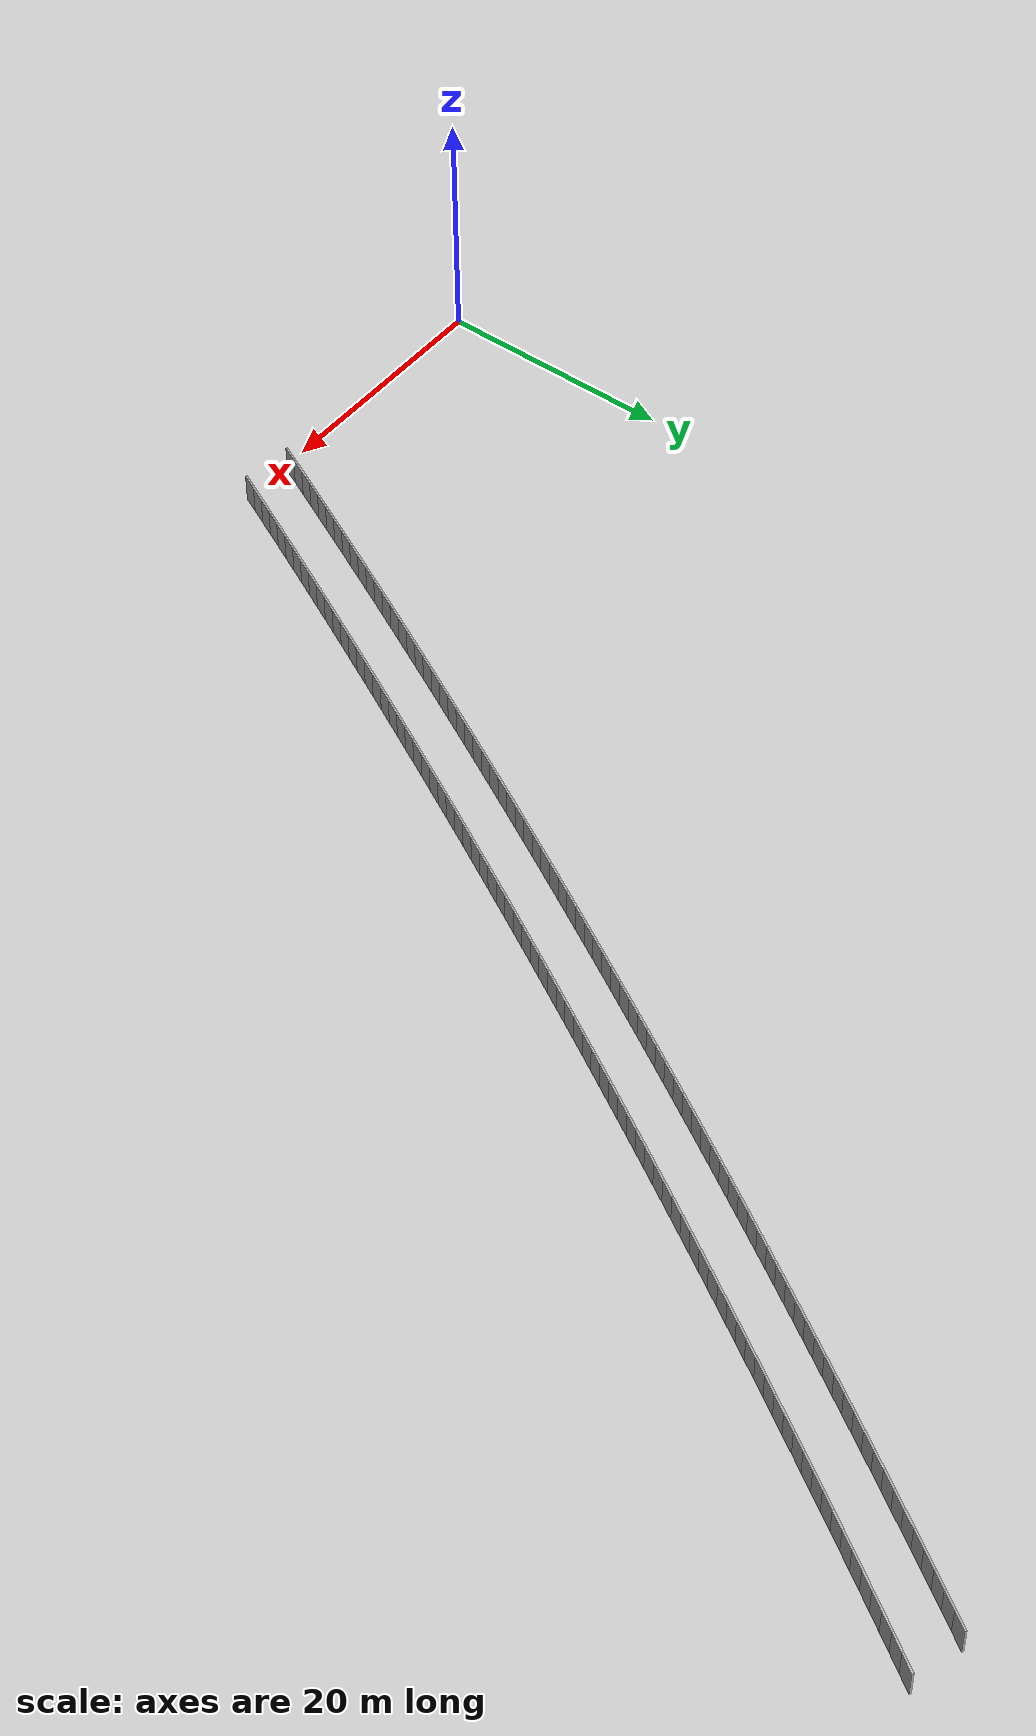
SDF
<sdf version="1.6">
 <model name="sps_0217">
  <static>1</static>
  <allow_auto_disable>0</allow_auto_disable>
  <link name="Wall4891">
   <collision name="collision"><geometry><box><size>1.49664 0.15 2.5</size></box></geometry></collision>
   <visual name="visual">
    <geometry><box><size>1.49664 0.15 2.5</size></box></geometry>
    <transparency>0.0</transparency>
   </visual>
   <pose>81.4339 98.8159 1.25 0 0 -2.13633</pose>
  </link>
  <link name="Wall4892">
   <collision name="collision"><geometry><box><size>1.49649 0.15 2.5</size></box></geometry></collision>
   <visual name="visual">
    <geometry><box><size>1.49649 0.15 2.5</size></box></geometry>
    <transparency>0.0</transparency>
   </visual>
   <pose>80.633 97.5517 1.25 0 0 -2.13466</pose>
  </link>
  <link name="Wall4893">
   <collision name="collision"><geometry><box><size>1.49655 0.15 2.5</size></box></geometry></collision>
   <visual name="visual">
    <geometry><box><size>1.49655 0.15 2.5</size></box></geometry>
    <transparency>0.0</transparency>
   </visual>
   <pose>79.8342 96.2862 1.25 0 0 -2.13304</pose>
  </link>
  <link name="Wall4894">
   <collision name="collision"><geometry><box><size>1.49655 0.15 2.5</size></box></geometry></collision>
   <visual name="visual">
    <geometry><box><size>1.49655 0.15 2.5</size></box></geometry>
    <transparency>0.0</transparency>
   </visual>
   <pose>79.0373 95.0194 1.25 0 0 -2.1315</pose>
  </link>
  <link name="Wall4895">
   <collision name="collision"><geometry><box><size>1.49648 0.15 2.5</size></box></geometry></collision>
   <visual name="visual">
    <geometry><box><size>1.49648 0.15 2.5</size></box></geometry>
    <transparency>0.0</transparency>
   </visual>
   <pose>78.2425 93.7514 1.25 0 0 -2.12989</pose>
  </link>
  <link name="Wall4896">
   <collision name="collision"><geometry><box><size>1.49633 0.15 2.5</size></box></geometry></collision>
   <visual name="visual">
    <geometry><box><size>1.49633 0.15 2.5</size></box></geometry>
    <transparency>0.0</transparency>
   </visual>
   <pose>77.4499 92.4822 1.25 0 0 -2.12827</pose>
  </link>
  <link name="Wall4897">
   <collision name="collision"><geometry><box><size>1.49661 0.15 2.5</size></box></geometry></collision>
   <visual name="visual">
    <geometry><box><size>1.49661 0.15 2.5</size></box></geometry>
    <transparency>0.0</transparency>
   </visual>
   <pose>76.6591 91.2117 1.25 0 0 -2.12672</pose>
  </link>
  <link name="Wall4898">
   <collision name="collision"><geometry><box><size>1.49663 0.15 2.5</size></box></geometry></collision>
   <visual name="visual">
    <geometry><box><size>1.49663 0.15 2.5</size></box></geometry>
    <transparency>0.0</transparency>
   </visual>
   <pose>75.8703 89.9399 1.25 0 0 -2.12527</pose>
  </link>
  <link name="Wall4899">
   <collision name="collision"><geometry><box><size>1.49649 0.15 2.5</size></box></geometry></collision>
   <visual name="visual">
    <geometry><box><size>1.49649 0.15 2.5</size></box></geometry>
    <transparency>0.0</transparency>
   </visual>
   <pose>75.0834 88.6669 1.25 0 0 -2.12365</pose>
  </link>
  <link name="Wall4900">
   <collision name="collision"><geometry><box><size>1.49668 0.15 2.5</size></box></geometry></collision>
   <visual name="visual">
    <geometry><box><size>1.49668 0.15 2.5</size></box></geometry>
    <transparency>0.0</transparency>
   </visual>
   <pose>74.2985 87.3926 1.25 0 0 -2.12199</pose>
  </link>
  <link name="Wall4901">
   <collision name="collision"><geometry><box><size>1.49649 0.15 2.5</size></box></geometry></collision>
   <visual name="visual">
    <geometry><box><size>1.49649 0.15 2.5</size></box></geometry>
    <transparency>0.0</transparency>
   </visual>
   <pose>73.5159 86.117 1.25 0 0 -2.1203</pose>
  </link>
  <link name="Wall4902">
   <collision name="collision"><geometry><box><size>1.49635 0.15 2.5</size></box></geometry></collision>
   <visual name="visual">
    <geometry><box><size>1.49635 0.15 2.5</size></box></geometry>
    <transparency>0.0</transparency>
   </visual>
   <pose>72.7353 84.8403 1.25 0 0 -2.11882</pose>
  </link>
  <link name="Wall4903">
   <collision name="collision"><geometry><box><size>1.49669 0.15 2.5</size></box></geometry></collision>
   <visual name="visual">
    <geometry><box><size>1.49669 0.15 2.5</size></box></geometry>
    <transparency>0.0</transparency>
   </visual>
   <pose>71.9567 83.5623 1.25 0 0 -2.11715</pose>
  </link>
  <link name="Wall4904">
   <collision name="collision"><geometry><box><size>1.49645 0.15 2.5</size></box></geometry></collision>
   <visual name="visual">
    <geometry><box><size>1.49645 0.15 2.5</size></box></geometry>
    <transparency>0.0</transparency>
   </visual>
   <pose>71.18 82.283 1.25 0 0 -2.11563</pose>
  </link>
  <link name="Wall4905">
   <collision name="collision"><geometry><box><size>1.49648 0.15 2.5</size></box></geometry></collision>
   <visual name="visual">
    <geometry><box><size>1.49648 0.15 2.5</size></box></geometry>
    <transparency>0.0</transparency>
   </visual>
   <pose>70.4054 81.0026 1.25 0 0 -2.11409</pose>
  </link>
  <link name="Wall4906">
   <collision name="collision"><geometry><box><size>1.49665 0.15 2.5</size></box></geometry></collision>
   <visual name="visual">
    <geometry><box><size>1.49665 0.15 2.5</size></box></geometry>
    <transparency>0.0</transparency>
   </visual>
   <pose>69.6328 79.7209 1.25 0 0 -2.11245</pose>
  </link>
  <link name="Wall4907">
   <collision name="collision"><geometry><box><size>1.49645 0.15 2.5</size></box></geometry></collision>
   <visual name="visual">
    <geometry><box><size>1.49645 0.15 2.5</size></box></geometry>
    <transparency>0.0</transparency>
   </visual>
   <pose>68.8622 78.438 1.25 0 0 -2.11096</pose>
  </link>
  <link name="Wall4908">
   <collision name="collision"><geometry><box><size>1.49652 0.15 2.5</size></box></geometry></collision>
   <visual name="visual">
    <geometry><box><size>1.49652 0.15 2.5</size></box></geometry>
    <transparency>0.0</transparency>
   </visual>
   <pose>68.0937 77.1539 1.25 0 0 -2.10922</pose>
  </link>
  <link name="Wall4909">
   <collision name="collision"><geometry><box><size>1.49633 0.15 2.5</size></box></geometry></collision>
   <visual name="visual">
    <geometry><box><size>1.49633 0.15 2.5</size></box></geometry>
    <transparency>0.0</transparency>
   </visual>
   <pose>67.3274 75.8686 1.25 0 0 -2.10773</pose>
  </link>
  <link name="Wall4910">
   <collision name="collision"><geometry><box><size>1.49669 0.15 2.5</size></box></geometry></collision>
   <visual name="visual">
    <geometry><box><size>1.49669 0.15 2.5</size></box></geometry>
    <transparency>0.0</transparency>
   </visual>
   <pose>66.5629 74.5821 1.25 0 0 -2.10622</pose>
  </link>
  <link name="Wall4911">
   <collision name="collision"><geometry><box><size>1.49656 0.15 2.5</size></box></geometry></collision>
   <visual name="visual">
    <geometry><box><size>1.49656 0.15 2.5</size></box></geometry>
    <transparency>0.0</transparency>
   </visual>
   <pose>65.8003 73.2943 1.25 0 0 -2.10456</pose>
  </link>
  <link name="Wall4912">
   <collision name="collision"><geometry><box><size>1.49643 0.15 2.5</size></box></geometry></collision>
   <visual name="visual">
    <geometry><box><size>1.49643 0.15 2.5</size></box></geometry>
    <transparency>0.0</transparency>
   </visual>
   <pose>65.0399 72.0054 1.25 0 0 -2.10305</pose>
  </link>
  <link name="Wall4913">
   <collision name="collision"><geometry><box><size>1.49648 0.15 2.5</size></box></geometry></collision>
   <visual name="visual">
    <geometry><box><size>1.49648 0.15 2.5</size></box></geometry>
    <transparency>0.0</transparency>
   </visual>
   <pose>64.2816 70.7153 1.25 0 0 -2.10133</pose>
  </link>
  <link name="Wall4914">
   <collision name="collision"><geometry><box><size>1.49661 0.15 2.5</size></box></geometry></collision>
   <visual name="visual">
    <geometry><box><size>1.49661 0.15 2.5</size></box></geometry>
    <transparency>0.0</transparency>
   </visual>
   <pose>63.5254 69.4239 1.25 0 0 -2.09986</pose>
  </link>
  <link name="Wall4915">
   <collision name="collision"><geometry><box><size>1.49658 0.15 2.5</size></box></geometry></collision>
   <visual name="visual">
    <geometry><box><size>1.49658 0.15 2.5</size></box></geometry>
    <transparency>0.0</transparency>
   </visual>
   <pose>62.771 68.1313 1.25 0 0 -2.09821</pose>
  </link>
  <link name="Wall4916">
   <collision name="collision"><geometry><box><size>1.49654 0.15 2.5</size></box></geometry></collision>
   <visual name="visual">
    <geometry><box><size>1.49654 0.15 2.5</size></box></geometry>
    <transparency>0.0</transparency>
   </visual>
   <pose>62.0189 66.8375 1.25 0 0 -2.09662</pose>
  </link>
  <link name="Wall4917">
   <collision name="collision"><geometry><box><size>1.49637 0.15 2.5</size></box></geometry></collision>
   <visual name="visual">
    <geometry><box><size>1.49637 0.15 2.5</size></box></geometry>
    <transparency>0.0</transparency>
   </visual>
   <pose>61.2688 65.5426 1.25 0 0 -2.09504</pose>
  </link>
  <link name="Wall4918">
   <collision name="collision"><geometry><box><size>1.49667 0.15 2.5</size></box></geometry></collision>
   <visual name="visual">
    <geometry><box><size>1.49667 0.15 2.5</size></box></geometry>
    <transparency>0.0</transparency>
   </visual>
   <pose>60.5207 64.2465 1.25 0 0 -2.09351</pose>
  </link>
  <link name="Wall4919">
   <collision name="collision"><geometry><box><size>1.49633 0.15 2.5</size></box></geometry></collision>
   <visual name="visual">
    <geometry><box><size>1.49633 0.15 2.5</size></box></geometry>
    <transparency>0.0</transparency>
   </visual>
   <pose>59.7746 62.9492 1.25 0 0 -2.09181</pose>
  </link>
  <link name="Wall4920">
   <collision name="collision"><geometry><box><size>1.49664 0.15 2.5</size></box></geometry></collision>
   <visual name="visual">
    <geometry><box><size>1.49664 0.15 2.5</size></box></geometry>
    <transparency>0.0</transparency>
   </visual>
   <pose>59.0308 61.6507 1.25 0 0 -2.09028</pose>
  </link>
  <link name="Wall4921">
   <collision name="collision"><geometry><box><size>1.49645 0.15 2.5</size></box></geometry></collision>
   <visual name="visual">
    <geometry><box><size>1.49645 0.15 2.5</size></box></geometry>
    <transparency>0.0</transparency>
   </visual>
   <pose>58.2889 60.351 1.25 0 0 -2.08866</pose>
  </link>
  <link name="Wall4922">
   <collision name="collision"><geometry><box><size>1.49649 0.15 2.5</size></box></geometry></collision>
   <visual name="visual">
    <geometry><box><size>1.49649 0.15 2.5</size></box></geometry>
    <transparency>0.0</transparency>
   </visual>
   <pose>57.5491 59.0502 1.25 0 0 -2.08714</pose>
  </link>
  <link name="Wall4923">
   <collision name="collision"><geometry><box><size>1.49656 0.15 2.5</size></box></geometry></collision>
   <visual name="visual">
    <geometry><box><size>1.49656 0.15 2.5</size></box></geometry>
    <transparency>0.0</transparency>
   </visual>
   <pose>56.8112 57.7482 1.25 0 0 -2.08557</pose>
  </link>
  <link name="Wall4924">
   <collision name="collision"><geometry><box><size>1.49658 0.15 2.5</size></box></geometry></collision>
   <visual name="visual">
    <geometry><box><size>1.49658 0.15 2.5</size></box></geometry>
    <transparency>0.0</transparency>
   </visual>
   <pose>56.0754 56.445 1.25 0 0 -2.08402</pose>
  </link>
  <link name="Wall4925">
   <collision name="collision"><geometry><box><size>1.49654 0.15 2.5</size></box></geometry></collision>
   <visual name="visual">
    <geometry><box><size>1.49654 0.15 2.5</size></box></geometry>
    <transparency>0.0</transparency>
   </visual>
   <pose>55.3418 55.1406 1.25 0 0 -2.0823</pose>
  </link>
  <link name="Wall4926">
   <collision name="collision"><geometry><box><size>1.49652 0.15 2.5</size></box></geometry></collision>
   <visual name="visual">
    <geometry><box><size>1.49652 0.15 2.5</size></box></geometry>
    <transparency>0.0</transparency>
   </visual>
   <pose>54.6102 53.8351 1.25 0 0 -2.08086</pose>
  </link>
  <link name="Wall4927">
   <collision name="collision"><geometry><box><size>1.49652 0.15 2.5</size></box></geometry></collision>
   <visual name="visual">
    <geometry><box><size>1.49652 0.15 2.5</size></box></geometry>
    <transparency>0.0</transparency>
   </visual>
   <pose>53.8805 52.5285 1.25 0 0 -2.07927</pose>
  </link>
  <link name="Wall4928">
   <collision name="collision"><geometry><box><size>1.49652 0.15 2.5</size></box></geometry></collision>
   <visual name="visual">
    <geometry><box><size>1.49652 0.15 2.5</size></box></geometry>
    <transparency>0.0</transparency>
   </visual>
   <pose>53.1531 51.2207 1.25 0 0 -2.07759</pose>
  </link>
  <link name="Wall4929">
   <collision name="collision"><geometry><box><size>1.49626 0.15 2.5</size></box></geometry></collision>
   <visual name="visual">
    <geometry><box><size>1.49626 0.15 2.5</size></box></geometry>
    <transparency>0.0</transparency>
   </visual>
   <pose>52.4277 49.9119 1.25 0 0 -2.0762</pose>
  </link>
  <link name="Wall4930">
   <collision name="collision"><geometry><box><size>1.49672 0.15 2.5</size></box></geometry></collision>
   <visual name="visual">
    <geometry><box><size>1.49672 0.15 2.5</size></box></geometry>
    <transparency>0.0</transparency>
   </visual>
   <pose>51.7044 48.6018 1.25 0 0 -2.0743</pose>
  </link>
  <link name="Wall4931">
   <collision name="collision"><geometry><box><size>1.49653 0.15 2.5</size></box></geometry></collision>
   <visual name="visual">
    <geometry><box><size>1.49653 0.15 2.5</size></box></geometry>
    <transparency>0.0</transparency>
   </visual>
   <pose>50.9832 47.2904 1.25 0 0 -2.07288</pose>
  </link>
  <link name="Wall4932">
   <collision name="collision"><geometry><box><size>1.49649 0.15 2.5</size></box></geometry></collision>
   <visual name="visual">
    <geometry><box><size>1.49649 0.15 2.5</size></box></geometry>
    <transparency>0.0</transparency>
   </visual>
   <pose>50.2641 45.978 1.25 0 0 -2.07122</pose>
  </link>
  <link name="Wall4933">
   <collision name="collision"><geometry><box><size>1.49651 0.15 2.5</size></box></geometry></collision>
   <visual name="visual">
    <geometry><box><size>1.49651 0.15 2.5</size></box></geometry>
    <transparency>0.0</transparency>
   </visual>
   <pose>49.5471 44.6644 1.25 0 0 -2.06954</pose>
  </link>
  <link name="Wall4934">
   <collision name="collision"><geometry><box><size>1.49649 0.15 2.5</size></box></geometry></collision>
   <visual name="visual">
    <geometry><box><size>1.49649 0.15 2.5</size></box></geometry>
    <transparency>0.0</transparency>
   </visual>
   <pose>48.8322 43.3497 1.25 0 0 -2.06816</pose>
  </link>
  <link name="Wall4935">
   <collision name="collision"><geometry><box><size>1.49645 0.15 2.5</size></box></geometry></collision>
   <visual name="visual">
    <geometry><box><size>1.49645 0.15 2.5</size></box></geometry>
    <transparency>0.0</transparency>
   </visual>
   <pose>48.1193 42.034 1.25 0 0 -2.06664</pose>
  </link>
  <link name="Wall4936">
   <collision name="collision"><geometry><box><size>1.49661 0.15 2.5</size></box></geometry></collision>
   <visual name="visual">
    <geometry><box><size>1.49661 0.15 2.5</size></box></geometry>
    <transparency>0.0</transparency>
   </visual>
   <pose>47.4083 40.7171 1.25 0 0 -2.06496</pose>
  </link>
  <link name="Wall4937">
   <collision name="collision"><geometry><box><size>1.49646 0.15 2.5</size></box></geometry></collision>
   <visual name="visual">
    <geometry><box><size>1.49646 0.15 2.5</size></box></geometry>
    <transparency>0.0</transparency>
   </visual>
   <pose>46.6996 39.399 1.25 0 0 -2.0633</pose>
  </link>
  <link name="Wall4938">
   <collision name="collision"><geometry><box><size>1.49658 0.15 2.5</size></box></geometry></collision>
   <visual name="visual">
    <geometry><box><size>1.49658 0.15 2.5</size></box></geometry>
    <transparency>0.0</transparency>
   </visual>
   <pose>45.9931 38.0798 1.25 0 0 -2.06173</pose>
  </link>
  <link name="Wall4939">
   <collision name="collision"><geometry><box><size>1.49652 0.15 2.5</size></box></geometry></collision>
   <visual name="visual">
    <geometry><box><size>1.49652 0.15 2.5</size></box></geometry>
    <transparency>0.0</transparency>
   </visual>
   <pose>45.2885 36.7595 1.25 0 0 -2.06027</pose>
  </link>
  <link name="Wall4940">
   <collision name="collision"><geometry><box><size>1.49652 0.15 2.5</size></box></geometry></collision>
   <visual name="visual">
    <geometry><box><size>1.49652 0.15 2.5</size></box></geometry>
    <transparency>0.0</transparency>
   </visual>
   <pose>44.586 35.4381 1.25 0 0 -2.05861</pose>
  </link>
  <link name="Wall4941">
   <collision name="collision"><geometry><box><size>1.49641 0.15 2.5</size></box></geometry></collision>
   <visual name="visual">
    <geometry><box><size>1.49641 0.15 2.5</size></box></geometry>
    <transparency>0.0</transparency>
   </visual>
   <pose>43.8856 34.1156 1.25 0 0 -2.05699</pose>
  </link>
  <link name="Wall4942">
   <collision name="collision"><geometry><box><size>1.49655 0.15 2.5</size></box></geometry></collision>
   <visual name="visual">
    <geometry><box><size>1.49655 0.15 2.5</size></box></geometry>
    <transparency>0.0</transparency>
   </visual>
   <pose>43.1874 32.792 1.25 0 0 -2.05542</pose>
  </link>
  <link name="Wall4943">
   <collision name="collision"><geometry><box><size>1.49647 0.15 2.5</size></box></geometry></collision>
   <visual name="visual">
    <geometry><box><size>1.49647 0.15 2.5</size></box></geometry>
    <transparency>0.0</transparency>
   </visual>
   <pose>42.4912 31.4673 1.25 0 0 -2.05393</pose>
  </link>
  <link name="Wall4944">
   <collision name="collision"><geometry><box><size>1.49654 0.15 2.5</size></box></geometry></collision>
   <visual name="visual">
    <geometry><box><size>1.49654 0.15 2.5</size></box></geometry>
    <transparency>0.0</transparency>
   </visual>
   <pose>41.7971 30.1415 1.25 0 0 -2.05225</pose>
  </link>
  <link name="Wall4945">
   <collision name="collision"><geometry><box><size>1.49655 0.15 2.5</size></box></geometry></collision>
   <visual name="visual">
    <geometry><box><size>1.49655 0.15 2.5</size></box></geometry>
    <transparency>0.0</transparency>
   </visual>
   <pose>41.1052 28.8145 1.25 0 0 -2.05059</pose>
  </link>
  <link name="Wall4946">
   <collision name="collision"><geometry><box><size>1.49662 0.15 2.5</size></box></geometry></collision>
   <visual name="visual">
    <geometry><box><size>1.49662 0.15 2.5</size></box></geometry>
    <transparency>0.0</transparency>
   </visual>
   <pose>40.4154 27.4864 1.25 0 0 -2.04918</pose>
  </link>
  <link name="Wall4947">
   <collision name="collision"><geometry><box><size>1.49651 0.15 2.5</size></box></geometry></collision>
   <visual name="visual">
    <geometry><box><size>1.49651 0.15 2.5</size></box></geometry>
    <transparency>0.0</transparency>
   </visual>
   <pose>39.7275 26.1573 1.25 0 0 -2.04761</pose>
  </link>
  <link name="Wall4948">
   <collision name="collision"><geometry><box><size>1.49656 0.15 2.5</size></box></geometry></collision>
   <visual name="visual">
    <geometry><box><size>1.49656 0.15 2.5</size></box></geometry>
    <transparency>0.0</transparency>
   </visual>
   <pose>39.0418 24.8271 1.25 0 0 -2.0459</pose>
  </link>
  <link name="Wall4949">
   <collision name="collision"><geometry><box><size>1.49645 0.15 2.5</size></box></geometry></collision>
   <visual name="visual">
    <geometry><box><size>1.49645 0.15 2.5</size></box></geometry>
    <transparency>0.0</transparency>
   </visual>
   <pose>38.3583 23.4958 1.25 0 0 -2.04433</pose>
  </link>
  <link name="Wall4950">
   <collision name="collision"><geometry><box><size>1.49646 0.15 2.5</size></box></geometry></collision>
   <visual name="visual">
    <geometry><box><size>1.49646 0.15 2.5</size></box></geometry>
    <transparency>0.0</transparency>
   </visual>
   <pose>37.6768 22.1635 1.25 0 0 -2.04282</pose>
  </link>
  <link name="Wall4951">
   <collision name="collision"><geometry><box><size>1.49647 0.15 2.5</size></box></geometry></collision>
   <visual name="visual">
    <geometry><box><size>1.49647 0.15 2.5</size></box></geometry>
    <transparency>0.0</transparency>
   </visual>
   <pose>36.9976 20.8301 1.25 0 0 -2.04112</pose>
  </link>
  <link name="Wall4952">
   <collision name="collision"><geometry><box><size>1.49651 0.15 2.5</size></box></geometry></collision>
   <visual name="visual">
    <geometry><box><size>1.49651 0.15 2.5</size></box></geometry>
    <transparency>0.0</transparency>
   </visual>
   <pose>36.3204 19.4956 1.25 0 0 -2.03964</pose>
  </link>
  <link name="Wall4953">
   <collision name="collision"><geometry><box><size>1.49655 0.15 2.5</size></box></geometry></collision>
   <visual name="visual">
    <geometry><box><size>1.49655 0.15 2.5</size></box></geometry>
    <transparency>0.0</transparency>
   </visual>
   <pose>35.6453 18.16 1.25 0 0 -2.03798</pose>
  </link>
  <link name="Wall4954">
   <collision name="collision"><geometry><box><size>1.49628 0.15 2.5</size></box></geometry></collision>
   <visual name="visual">
    <geometry><box><size>1.49628 0.15 2.5</size></box></geometry>
    <transparency>0.0</transparency>
   </visual>
   <pose>34.9722 16.8235 1.25 0 0 -2.03671</pose>
  </link>
  <link name="Wall4955">
   <collision name="collision"><geometry><box><size>1.49646 0.15 2.5</size></box></geometry></collision>
   <visual name="visual">
    <geometry><box><size>1.49646 0.15 2.5</size></box></geometry>
    <transparency>0.0</transparency>
   </visual>
   <pose>34.3012 15.486 1.25 0 0 -2.03486</pose>
  </link>
  <link name="Wall4956">
   <collision name="collision"><geometry><box><size>1.49657 0.15 2.5</size></box></geometry></collision>
   <visual name="visual">
    <geometry><box><size>1.49657 0.15 2.5</size></box></geometry>
    <transparency>0.0</transparency>
   </visual>
   <pose>33.6325 14.1472 1.25 0 0 -2.03319</pose>
  </link>
  <link name="Wall4957">
   <collision name="collision"><geometry><box><size>1.49655 0.15 2.5</size></box></geometry></collision>
   <visual name="visual">
    <geometry><box><size>1.49655 0.15 2.5</size></box></geometry>
    <transparency>0.0</transparency>
   </visual>
   <pose>32.9659 12.8073 1.25 0 0 -2.03169</pose>
  </link>
  <link name="Wall4958">
   <collision name="collision"><geometry><box><size>1.49653 0.15 2.5</size></box></geometry></collision>
   <visual name="visual">
    <geometry><box><size>1.49653 0.15 2.5</size></box></geometry>
    <transparency>0.0</transparency>
   </visual>
   <pose>32.3014 11.4664 1.25 0 0 -2.0301</pose>
  </link>
  <link name="Wall4959">
   <collision name="collision"><geometry><box><size>1.49657 0.15 2.5</size></box></geometry></collision>
   <visual name="visual">
    <geometry><box><size>1.49657 0.15 2.5</size></box></geometry>
    <transparency>0.0</transparency>
   </visual>
   <pose>31.639 10.1244 1.25 0 0 -2.02841</pose>
  </link>
  <link name="Wall4960">
   <collision name="collision"><geometry><box><size>1.49639 0.15 2.5</size></box></geometry></collision>
   <visual name="visual">
    <geometry><box><size>1.49639 0.15 2.5</size></box></geometry>
    <transparency>0.0</transparency>
   </visual>
   <pose>30.9788 8.78139 1.25 0 0 -2.02697</pose>
  </link>
  <link name="Wall4961">
   <collision name="collision"><geometry><box><size>1.49653 0.15 2.5</size></box></geometry></collision>
   <visual name="visual">
    <geometry><box><size>1.49653 0.15 2.5</size></box></geometry>
    <transparency>0.0</transparency>
   </visual>
   <pose>30.3208 7.43739 1.25 0 0 -2.02529</pose>
  </link>
  <link name="Wall4962">
   <collision name="collision"><geometry><box><size>1.49655 0.15 2.5</size></box></geometry></collision>
   <visual name="visual">
    <geometry><box><size>1.49655 0.15 2.5</size></box></geometry>
    <transparency>0.0</transparency>
   </visual>
   <pose>29.6648 6.0923 1.25 0 0 -2.02383</pose>
  </link>
  <link name="Wall4963">
   <collision name="collision"><geometry><box><size>1.49649 0.15 2.5</size></box></geometry></collision>
   <visual name="visual">
    <geometry><box><size>1.49649 0.15 2.5</size></box></geometry>
    <transparency>0.0</transparency>
   </visual>
   <pose>29.0109 4.7462 1.25 0 0 -2.02217</pose>
  </link>
  <link name="Wall4964">
   <collision name="collision"><geometry><box><size>1.49683 0.15 2.5</size></box></geometry></collision>
   <visual name="visual">
    <geometry><box><size>1.49683 0.15 2.5</size></box></geometry>
    <transparency>0.0</transparency>
   </visual>
   <pose>28.3592 3.39888 1.25 0 0 -2.02047</pose>
  </link>
  <link name="Wall4965">
   <collision name="collision"><geometry><box><size>1.49651 0.15 2.5</size></box></geometry></collision>
   <visual name="visual">
    <geometry><box><size>1.49651 0.15 2.5</size></box></geometry>
    <transparency>0.0</transparency>
   </visual>
   <pose>27.7096 2.05049 1.25 0 0 -2.0189</pose>
  </link>
  <link name="Wall4966">
   <collision name="collision"><geometry><box><size>1.49643 0.15 2.5</size></box></geometry></collision>
   <visual name="visual">
    <geometry><box><size>1.49643 0.15 2.5</size></box></geometry>
    <transparency>0.0</transparency>
   </visual>
   <pose>27.0622 0.701308 1.25 0 0 -2.01748</pose>
  </link>
  <link name="Wall6688">
   <collision name="collision"><geometry><box><size>1.50311 0.15 2.5</size></box></geometry></collision>
   <visual name="visual">
    <geometry><box><size>1.50311 0.15 2.5</size></box></geometry>
    <transparency>0.0</transparency>
   </visual>
   <pose>77.1349 99.7645 1.25 0 0 -2.13471</pose>
  </link>
  <link name="Wall6689">
   <collision name="collision"><geometry><box><size>1.50307 0.15 2.5</size></box></geometry></collision>
   <visual name="visual">
    <geometry><box><size>1.50307 0.15 2.5</size></box></geometry>
    <transparency>0.0</transparency>
   </visual>
   <pose>76.3325 98.4935 1.25 0 0 -2.13314</pose>
  </link>
  <link name="Wall6690">
   <collision name="collision"><geometry><box><size>1.50318 0.15 2.5</size></box></geometry></collision>
   <visual name="visual">
    <geometry><box><size>1.50318 0.15 2.5</size></box></geometry>
    <transparency>0.0</transparency>
   </visual>
   <pose>75.5322 97.2212 1.25 0 0 -2.13151</pose>
  </link>
  <link name="Wall6691">
   <collision name="collision"><geometry><box><size>1.50303 0.15 2.5</size></box></geometry></collision>
   <visual name="visual">
    <geometry><box><size>1.50303 0.15 2.5</size></box></geometry>
    <transparency>0.0</transparency>
   </visual>
   <pose>74.7338 95.9476 1.25 0 0 -2.12989</pose>
  </link>
  <link name="Wall6692">
   <collision name="collision"><geometry><box><size>1.50317 0.15 2.5</size></box></geometry></collision>
   <visual name="visual">
    <geometry><box><size>1.50317 0.15 2.5</size></box></geometry>
    <transparency>0.0</transparency>
   </visual>
   <pose>73.9376 94.6727 1.25 0 0 -2.12821</pose>
  </link>
  <link name="Wall6693">
   <collision name="collision"><geometry><box><size>1.50313 0.15 2.5</size></box></geometry></collision>
   <visual name="visual">
    <geometry><box><size>1.50313 0.15 2.5</size></box></geometry>
    <transparency>0.0</transparency>
   </visual>
   <pose>73.1435 93.3965 1.25 0 0 -2.1267</pose>
  </link>
  <link name="Wall6694">
   <collision name="collision"><geometry><box><size>1.50299 0.15 2.5</size></box></geometry></collision>
   <visual name="visual">
    <geometry><box><size>1.50299 0.15 2.5</size></box></geometry>
    <transparency>0.0</transparency>
   </visual>
   <pose>72.3512 92.1192 1.25 0 0 -2.12532</pose>
  </link>
  <link name="Wall6695">
   <collision name="collision"><geometry><box><size>1.50324 0.15 2.5</size></box></geometry></collision>
   <visual name="visual">
    <geometry><box><size>1.50324 0.15 2.5</size></box></geometry>
    <transparency>0.0</transparency>
   </visual>
   <pose>71.5609 90.8406 1.25 0 0 -2.1235</pose>
  </link>
  <link name="Wall6696">
   <collision name="collision"><geometry><box><size>1.50305 0.15 2.5</size></box></geometry></collision>
   <visual name="visual">
    <geometry><box><size>1.50305 0.15 2.5</size></box></geometry>
    <transparency>0.0</transparency>
   </visual>
   <pose>70.7727 89.5607 1.25 0 0 -2.12205</pose>
  </link>
  <link name="Wall6697">
   <collision name="collision"><geometry><box><size>1.50306 0.15 2.5</size></box></geometry></collision>
   <visual name="visual">
    <geometry><box><size>1.50306 0.15 2.5</size></box></geometry>
    <transparency>0.0</transparency>
   </visual>
   <pose>69.9866 88.2796 1.25 0 0 -2.12028</pose>
  </link>
  <link name="Wall6698">
   <collision name="collision"><geometry><box><size>1.50318 0.15 2.5</size></box></geometry></collision>
   <visual name="visual">
    <geometry><box><size>1.50318 0.15 2.5</size></box></geometry>
    <transparency>0.0</transparency>
   </visual>
   <pose>69.2025 86.9972 1.25 0 0 -2.11885</pose>
  </link>
  <link name="Wall6699">
   <collision name="collision"><geometry><box><size>1.50287 0.15 2.5</size></box></geometry></collision>
   <visual name="visual">
    <geometry><box><size>1.50287 0.15 2.5</size></box></geometry>
    <transparency>0.0</transparency>
   </visual>
   <pose>68.4204 85.7137 1.25 0 0 -2.11727</pose>
  </link>
  <link name="Wall6700">
   <collision name="collision"><geometry><box><size>1.50302 0.15 2.5</size></box></geometry></collision>
   <visual name="visual">
    <geometry><box><size>1.50302 0.15 2.5</size></box></geometry>
    <transparency>0.0</transparency>
   </visual>
   <pose>67.6404 84.429 1.25 0 0 -2.11564</pose>
  </link>
  <link name="Wall6701">
   <collision name="collision"><geometry><box><size>1.50321 0.15 2.5</size></box></geometry></collision>
   <visual name="visual">
    <geometry><box><size>1.50321 0.15 2.5</size></box></geometry>
    <transparency>0.0</transparency>
   </visual>
   <pose>66.8624 83.1429 1.25 0 0 -2.11404</pose>
  </link>
  <link name="Wall6702">
   <collision name="collision"><geometry><box><size>1.50298 0.15 2.5</size></box></geometry></collision>
   <visual name="visual">
    <geometry><box><size>1.50298 0.15 2.5</size></box></geometry>
    <transparency>0.0</transparency>
   </visual>
   <pose>66.0864 81.8556 1.25 0 0 -2.11253</pose>
  </link>
  <link name="Wall6703">
   <collision name="collision"><geometry><box><size>1.50318 0.15 2.5</size></box></geometry></collision>
   <visual name="visual">
    <geometry><box><size>1.50318 0.15 2.5</size></box></geometry>
    <transparency>0.0</transparency>
   </visual>
   <pose>65.3124 80.5671 1.25 0 0 -2.11093</pose>
  </link>
  <link name="Wall6704">
   <collision name="collision"><geometry><box><size>1.5031 0.15 2.5</size></box></geometry></collision>
   <visual name="visual">
    <geometry><box><size>1.5031 0.15 2.5</size></box></geometry>
    <transparency>0.0</transparency>
   </visual>
   <pose>64.5405 79.2773 1.25 0 0 -2.10926</pose>
  </link>
  <link name="Wall6705">
   <collision name="collision"><geometry><box><size>1.50311 0.15 2.5</size></box></geometry></collision>
   <visual name="visual">
    <geometry><box><size>1.50311 0.15 2.5</size></box></geometry>
    <transparency>0.0</transparency>
   </visual>
   <pose>63.7707 77.9863 1.25 0 0 -2.10769</pose>
  </link>
  <link name="Wall6706">
   <collision name="collision"><geometry><box><size>1.50292 0.15 2.5</size></box></geometry></collision>
   <visual name="visual">
    <geometry><box><size>1.50292 0.15 2.5</size></box></geometry>
    <transparency>0.0</transparency>
   </visual>
   <pose>63.0029 76.6942 1.25 0 0 -2.10621</pose>
  </link>
  <link name="Wall6707">
   <collision name="collision"><geometry><box><size>1.50329 0.15 2.5</size></box></geometry></collision>
   <visual name="visual">
    <geometry><box><size>1.50329 0.15 2.5</size></box></geometry>
    <transparency>0.0</transparency>
   </visual>
   <pose>62.2371 75.4008 1.25 0 0 -2.10455</pose>
  </link>
  <link name="Wall6708">
   <collision name="collision"><geometry><box><size>1.50283 0.15 2.5</size></box></geometry></collision>
   <visual name="visual">
    <geometry><box><size>1.50283 0.15 2.5</size></box></geometry>
    <transparency>0.0</transparency>
   </visual>
   <pose>61.4733 74.1062 1.25 0 0 -2.10299</pose>
  </link>
  <link name="Wall6709">
   <collision name="collision"><geometry><box><size>1.50305 0.15 2.5</size></box></geometry></collision>
   <visual name="visual">
    <geometry><box><size>1.50305 0.15 2.5</size></box></geometry>
    <transparency>0.0</transparency>
   </visual>
   <pose>60.7118 72.8105 1.25 0 0 -2.1014</pose>
  </link>
  <link name="Wall6710">
   <collision name="collision"><geometry><box><size>1.50309 0.15 2.5</size></box></geometry></collision>
   <visual name="visual">
    <geometry><box><size>1.50309 0.15 2.5</size></box></geometry>
    <transparency>0.0</transparency>
   </visual>
   <pose>59.9521 71.5135 1.25 0 0 -2.09983</pose>
  </link>
  <link name="Wall6711">
   <collision name="collision"><geometry><box><size>1.50303 0.15 2.5</size></box></geometry></collision>
   <visual name="visual">
    <geometry><box><size>1.50303 0.15 2.5</size></box></geometry>
    <transparency>0.0</transparency>
   </visual>
   <pose>59.1946 70.2153 1.25 0 0 -2.09816</pose>
  </link>
  <link name="Wall6712">
   <collision name="collision"><geometry><box><size>1.50327 0.15 2.5</size></box></geometry></collision>
   <visual name="visual">
    <geometry><box><size>1.50327 0.15 2.5</size></box></geometry>
    <transparency>0.0</transparency>
   </visual>
   <pose>58.4391 68.9158 1.25 0 0 -2.09666</pose>
  </link>
  <link name="Wall6713">
   <collision name="collision"><geometry><box><size>1.50307 0.15 2.5</size></box></geometry></collision>
   <visual name="visual">
    <geometry><box><size>1.50307 0.15 2.5</size></box></geometry>
    <transparency>0.0</transparency>
   </visual>
   <pose>57.6857 67.6151 1.25 0 0 -2.09504</pose>
  </link>
  <link name="Wall6714">
   <collision name="collision"><geometry><box><size>1.50331 0.15 2.5</size></box></geometry></collision>
   <visual name="visual">
    <geometry><box><size>1.50331 0.15 2.5</size></box></geometry>
    <transparency>0.0</transparency>
   </visual>
   <pose>56.9343 66.3132 1.25 0 0 -2.09345</pose>
  </link>
  <link name="Wall6715">
   <collision name="collision"><geometry><box><size>1.50287 0.15 2.5</size></box></geometry></collision>
   <visual name="visual">
    <geometry><box><size>1.50287 0.15 2.5</size></box></geometry>
    <transparency>0.0</transparency>
   </visual>
   <pose>56.185 65.0102 1.25 0 0 -2.09189</pose>
  </link>
  <link name="Wall6716">
   <collision name="collision"><geometry><box><size>1.50312 0.15 2.5</size></box></geometry></collision>
   <visual name="visual">
    <geometry><box><size>1.50312 0.15 2.5</size></box></geometry>
    <transparency>0.0</transparency>
   </visual>
   <pose>55.4378 63.7061 1.25 0 0 -2.09029</pose>
  </link>
  <link name="Wall6717">
   <collision name="collision"><geometry><box><size>1.50297 0.15 2.5</size></box></geometry></collision>
   <visual name="visual">
    <geometry><box><size>1.50297 0.15 2.5</size></box></geometry>
    <transparency>0.0</transparency>
   </visual>
   <pose>54.6926 62.4008 1.25 0 0 -2.08881</pose>
  </link>
  <link name="Wall6718">
   <collision name="collision"><geometry><box><size>1.5031 0.15 2.5</size></box></geometry></collision>
   <visual name="visual">
    <geometry><box><size>1.5031 0.15 2.5</size></box></geometry>
    <transparency>0.0</transparency>
   </visual>
   <pose>53.9495 61.0943 1.25 0 0 -2.08708</pose>
  </link>
  <link name="Wall6719">
   <collision name="collision"><geometry><box><size>1.50317 0.15 2.5</size></box></geometry></collision>
   <visual name="visual">
    <geometry><box><size>1.50317 0.15 2.5</size></box></geometry>
    <transparency>0.0</transparency>
   </visual>
   <pose>53.2085 59.7865 1.25 0 0 -2.08551</pose>
  </link>
  <link name="Wall6720">
   <collision name="collision"><geometry><box><size>1.50294 0.15 2.5</size></box></geometry></collision>
   <visual name="visual">
    <geometry><box><size>1.50294 0.15 2.5</size></box></geometry>
    <transparency>0.0</transparency>
   </visual>
   <pose>52.4696 58.4776 1.25 0 0 -2.08392</pose>
  </link>
  <link name="Wall6721">
   <collision name="collision"><geometry><box><size>1.50321 0.15 2.5</size></box></geometry></collision>
   <visual name="visual">
    <geometry><box><size>1.50321 0.15 2.5</size></box></geometry>
    <transparency>0.0</transparency>
   </visual>
   <pose>51.7327 57.1675 1.25 0 0 -2.08233</pose>
  </link>
  <link name="Wall6722">
   <collision name="collision"><geometry><box><size>1.5031 0.15 2.5</size></box></geometry></collision>
   <visual name="visual">
    <geometry><box><size>1.5031 0.15 2.5</size></box></geometry>
    <transparency>0.0</transparency>
   </visual>
   <pose>50.9979 55.8562 1.25 0 0 -2.08079</pose>
  </link>
  <link name="Wall6723">
   <collision name="collision"><geometry><box><size>1.50316 0.15 2.5</size></box></geometry></collision>
   <visual name="visual">
    <geometry><box><size>1.50316 0.15 2.5</size></box></geometry>
    <transparency>0.0</transparency>
   </visual>
   <pose>50.2652 54.5438 1.25 0 0 -2.07928</pose>
  </link>
  <link name="Wall6724">
   <collision name="collision"><geometry><box><size>1.50316 0.15 2.5</size></box></geometry></collision>
   <visual name="visual">
    <geometry><box><size>1.50316 0.15 2.5</size></box></geometry>
    <transparency>0.0</transparency>
   </visual>
   <pose>49.5344 53.2302 1.25 0 0 -2.0776</pose>
  </link>
  <link name="Wall6725">
   <collision name="collision"><geometry><box><size>1.50292 0.15 2.5</size></box></geometry></collision>
   <visual name="visual">
    <geometry><box><size>1.50292 0.15 2.5</size></box></geometry>
    <transparency>0.0</transparency>
   </visual>
   <pose>48.806 51.9155 1.25 0 0 -2.07597</pose>
  </link>
  <link name="Wall6726">
   <collision name="collision"><geometry><box><size>1.50304 0.15 2.5</size></box></geometry></collision>
   <visual name="visual">
    <geometry><box><size>1.50304 0.15 2.5</size></box></geometry>
    <transparency>0.0</transparency>
   </visual>
   <pose>48.0796 50.5997 1.25 0 0 -2.07444</pose>
  </link>
  <link name="Wall6727">
   <collision name="collision"><geometry><box><size>1.50296 0.15 2.5</size></box></geometry></collision>
   <visual name="visual">
    <geometry><box><size>1.50296 0.15 2.5</size></box></geometry>
    <transparency>0.0</transparency>
   </visual>
   <pose>47.3552 49.2828 1.25 0 0 -2.07299</pose>
  </link>
  <link name="Wall6728">
   <collision name="collision"><geometry><box><size>1.5031 0.15 2.5</size></box></geometry></collision>
   <visual name="visual">
    <geometry><box><size>1.5031 0.15 2.5</size></box></geometry>
    <transparency>0.0</transparency>
   </visual>
   <pose>46.6328 47.9647 1.25 0 0 -2.07123</pose>
  </link>
  <link name="Wall6729">
   <collision name="collision"><geometry><box><size>1.50305 0.15 2.5</size></box></geometry></collision>
   <visual name="visual">
    <geometry><box><size>1.50305 0.15 2.5</size></box></geometry>
    <transparency>0.0</transparency>
   </visual>
   <pose>45.9127 46.6454 1.25 0 0 -2.06972</pose>
  </link>
  <link name="Wall6730">
   <collision name="collision"><geometry><box><size>1.50313 0.15 2.5</size></box></geometry></collision>
   <visual name="visual">
    <geometry><box><size>1.50313 0.15 2.5</size></box></geometry>
    <transparency>0.0</transparency>
   </visual>
   <pose>45.1944 45.325 1.25 0 0 -2.06821</pose>
  </link>
  <link name="Wall6731">
   <collision name="collision"><geometry><box><size>1.50297 0.15 2.5</size></box></geometry></collision>
   <visual name="visual">
    <geometry><box><size>1.50297 0.15 2.5</size></box></geometry>
    <transparency>0.0</transparency>
   </visual>
   <pose>44.4784 44.0035 1.25 0 0 -2.06656</pose>
  </link>
  <link name="Wall6732">
   <collision name="collision"><geometry><box><size>1.50314 0.15 2.5</size></box></geometry></collision>
   <visual name="visual">
    <geometry><box><size>1.50314 0.15 2.5</size></box></geometry>
    <transparency>0.0</transparency>
   </visual>
   <pose>43.7645 42.6808 1.25 0 0 -2.06488</pose>
  </link>
  <link name="Wall6733">
   <collision name="collision"><geometry><box><size>1.5031 0.15 2.5</size></box></geometry></collision>
   <visual name="visual">
    <geometry><box><size>1.5031 0.15 2.5</size></box></geometry>
    <transparency>0.0</transparency>
   </visual>
   <pose>43.0526 41.3569 1.25 0 0 -2.06338</pose>
  </link>
  <link name="Wall6734">
   <collision name="collision"><geometry><box><size>1.50306 0.15 2.5</size></box></geometry></collision>
   <visual name="visual">
    <geometry><box><size>1.50306 0.15 2.5</size></box></geometry>
    <transparency>0.0</transparency>
   </visual>
   <pose>42.3428 40.032 1.25 0 0 -2.06187</pose>
  </link>
  <link name="Wall6735">
   <collision name="collision"><geometry><box><size>1.50318 0.15 2.5</size></box></geometry></collision>
   <visual name="visual">
    <geometry><box><size>1.50318 0.15 2.5</size></box></geometry>
    <transparency>0.0</transparency>
   </visual>
   <pose>41.6352 38.7059 1.25 0 0 -2.06012</pose>
  </link>
  <link name="Wall6736">
   <collision name="collision"><geometry><box><size>1.50309 0.15 2.5</size></box></geometry></collision>
   <visual name="visual">
    <geometry><box><size>1.50309 0.15 2.5</size></box></geometry>
    <transparency>0.0</transparency>
   </visual>
   <pose>40.9297 37.3786 1.25 0 0 -2.05854</pose>
  </link>
  <link name="Wall6737">
   <collision name="collision"><geometry><box><size>1.50302 0.15 2.5</size></box></geometry></collision>
   <visual name="visual">
    <geometry><box><size>1.50302 0.15 2.5</size></box></geometry>
    <transparency>0.0</transparency>
   </visual>
   <pose>40.2263 36.0503 1.25 0 0 -2.05706</pose>
  </link>
  <link name="Wall6738">
   <collision name="collision"><geometry><box><size>1.50297 0.15 2.5</size></box></geometry></collision>
   <visual name="visual">
    <geometry><box><size>1.50297 0.15 2.5</size></box></geometry>
    <transparency>0.0</transparency>
   </visual>
   <pose>39.5249 34.721 1.25 0 0 -2.0556</pose>
  </link>
  <link name="Wall6739">
   <collision name="collision"><geometry><box><size>1.50313 0.15 2.5</size></box></geometry></collision>
   <visual name="visual">
    <geometry><box><size>1.50313 0.15 2.5</size></box></geometry>
    <transparency>0.0</transparency>
   </visual>
   <pose>38.8256 33.3905 1.25 0 0 -2.05371</pose>
  </link>
  <link name="Wall6740">
   <collision name="collision"><geometry><box><size>1.50301 0.15 2.5</size></box></geometry></collision>
   <visual name="visual">
    <geometry><box><size>1.50301 0.15 2.5</size></box></geometry>
    <transparency>0.0</transparency>
   </visual>
   <pose>38.1287 32.0588 1.25 0 0 -2.05224</pose>
  </link>
  <link name="Wall6741">
   <collision name="collision"><geometry><box><size>1.50324 0.15 2.5</size></box></geometry></collision>
   <visual name="visual">
    <geometry><box><size>1.50324 0.15 2.5</size></box></geometry>
    <transparency>0.0</transparency>
   </visual>
   <pose>37.4336 30.726 1.25 0 0 -2.0507</pose>
  </link>
  <link name="Wall6742">
   <collision name="collision"><geometry><box><size>1.50315 0.15 2.5</size></box></geometry></collision>
   <visual name="visual">
    <geometry><box><size>1.50315 0.15 2.5</size></box></geometry>
    <transparency>0.0</transparency>
   </visual>
   <pose>36.7407 29.3921 1.25 0 0 -2.04917</pose>
  </link>
  <link name="Wall6743">
   <collision name="collision"><geometry><box><size>1.50295 0.15 2.5</size></box></geometry></collision>
   <visual name="visual">
    <geometry><box><size>1.50295 0.15 2.5</size></box></geometry>
    <transparency>0.0</transparency>
   </visual>
   <pose>36.0499 28.0572 1.25 0 0 -2.0475</pose>
  </link>
  <link name="Wall6744">
   <collision name="collision"><geometry><box><size>1.5032 0.15 2.5</size></box></geometry></collision>
   <visual name="visual">
    <geometry><box><size>1.5032 0.15 2.5</size></box></geometry>
    <transparency>0.0</transparency>
   </visual>
   <pose>35.3611 26.7212 1.25 0 0 -2.04605</pose>
  </link>
  <link name="Wall6745">
   <collision name="collision"><geometry><box><size>1.50295 0.15 2.5</size></box></geometry></collision>
   <visual name="visual">
    <geometry><box><size>1.50295 0.15 2.5</size></box></geometry>
    <transparency>0.0</transparency>
   </visual>
   <pose>34.6746 25.3841 1.25 0 0 -2.04431</pose>
  </link>
  <link name="Wall6746">
   <collision name="collision"><geometry><box><size>1.50306 0.15 2.5</size></box></geometry></collision>
   <visual name="visual">
    <geometry><box><size>1.50306 0.15 2.5</size></box></geometry>
    <transparency>0.0</transparency>
   </visual>
   <pose>33.9903 24.0459 1.25 0 0 -2.04267</pose>
  </link>
  <link name="Wall6747">
   <collision name="collision"><geometry><box><size>1.50318 0.15 2.5</size></box></geometry></collision>
   <visual name="visual">
    <geometry><box><size>1.50318 0.15 2.5</size></box></geometry>
    <transparency>0.0</transparency>
   </visual>
   <pose>33.308 22.7065 1.25 0 0 -2.04113</pose>
  </link>
  <link name="Wall6748">
   <collision name="collision"><geometry><box><size>1.50303 0.15 2.5</size></box></geometry></collision>
   <visual name="visual">
    <geometry><box><size>1.50303 0.15 2.5</size></box></geometry>
    <transparency>0.0</transparency>
   </visual>
   <pose>32.6278 21.3661 1.25 0 0 -2.03967</pose>
  </link>
  <link name="Wall6749">
   <collision name="collision"><geometry><box><size>1.50308 0.15 2.5</size></box></geometry></collision>
   <visual name="visual">
    <geometry><box><size>1.50308 0.15 2.5</size></box></geometry>
    <transparency>0.0</transparency>
   </visual>
   <pose>31.9497 20.0247 1.25 0 0 -2.03802</pose>
  </link>
  <link name="Wall6750">
   <collision name="collision"><geometry><box><size>1.5031 0.15 2.5</size></box></geometry></collision>
   <visual name="visual">
    <geometry><box><size>1.5031 0.15 2.5</size></box></geometry>
    <transparency>0.0</transparency>
   </visual>
   <pose>31.2737 18.6822 1.25 0 0 -2.03651</pose>
  </link>
  <link name="Wall6751">
   <collision name="collision"><geometry><box><size>1.50266 0.15 2.5</size></box></geometry></collision>
   <visual name="visual">
    <geometry><box><size>1.50266 0.15 2.5</size></box></geometry>
    <transparency>0.0</transparency>
   </visual>
   <pose>30.5998 17.3389 1.25 0 0 -2.03503</pose>
  </link>
  <link name="Wall6752">
   <collision name="collision"><geometry><box><size>1.50326 0.15 2.5</size></box></geometry></collision>
   <visual name="visual">
    <geometry><box><size>1.50326 0.15 2.5</size></box></geometry>
    <transparency>0.0</transparency>
   </visual>
   <pose>29.9282 15.9944 1.25 0 0 -2.03319</pose>
  </link>
  <link name="Wall6753">
   <collision name="collision"><geometry><box><size>1.50299 0.15 2.5</size></box></geometry></collision>
   <visual name="visual">
    <geometry><box><size>1.50299 0.15 2.5</size></box></geometry>
    <transparency>0.0</transparency>
   </visual>
   <pose>29.2587 14.6486 1.25 0 0 -2.03165</pose>
  </link>
  <link name="Wall6754">
   <collision name="collision"><geometry><box><size>1.50327 0.15 2.5</size></box></geometry></collision>
   <visual name="visual">
    <geometry><box><size>1.50327 0.15 2.5</size></box></geometry>
    <transparency>0.0</transparency>
   </visual>
   <pose>28.5914 13.3017 1.25 0 0 -2.02992</pose>
  </link>
  <link name="Wall6755">
   <collision name="collision"><geometry><box><size>1.5032 0.15 2.5</size></box></geometry></collision>
   <visual name="visual">
    <geometry><box><size>1.5032 0.15 2.5</size></box></geometry>
    <transparency>0.0</transparency>
   </visual>
   <pose>27.926 11.9537 1.25 0 0 -2.02863</pose>
  </link>
  <link name="Wall6756">
   <collision name="collision"><geometry><box><size>1.50306 0.15 2.5</size></box></geometry></collision>
   <visual name="visual">
    <geometry><box><size>1.50306 0.15 2.5</size></box></geometry>
    <transparency>0.0</transparency>
   </visual>
   <pose>27.2628 10.6048 1.25 0 0 -2.02687</pose>
  </link>
  <link name="Wall6757">
   <collision name="collision"><geometry><box><size>1.50297 0.15 2.5</size></box></geometry></collision>
   <visual name="visual">
    <geometry><box><size>1.50297 0.15 2.5</size></box></geometry>
    <transparency>0.0</transparency>
   </visual>
   <pose>26.602 9.25487 1.25 0 0 -2.02527</pose>
  </link>
  <link name="Wall6758">
   <collision name="collision"><geometry><box><size>1.50313 0.15 2.5</size></box></geometry></collision>
   <visual name="visual">
    <geometry><box><size>1.50313 0.15 2.5</size></box></geometry>
    <transparency>0.0</transparency>
   </visual>
   <pose>25.9432 7.90388 1.25 0 0 -2.02373</pose>
  </link>
  <link name="Wall6759">
   <collision name="collision"><geometry><box><size>1.50313 0.15 2.5</size></box></geometry></collision>
   <visual name="visual">
    <geometry><box><size>1.50313 0.15 2.5</size></box></geometry>
    <transparency>0.0</transparency>
   </visual>
   <pose>25.2865 6.5518 1.25 0 0 -2.02215</pose>
  </link>
  <link name="Wall6760">
   <collision name="collision"><geometry><box><size>1.50316 0.15 2.5</size></box></geometry></collision>
   <visual name="visual">
    <geometry><box><size>1.50316 0.15 2.5</size></box></geometry>
    <transparency>0.0</transparency>
   </visual>
   <pose>24.6319 5.19868 1.25 0 0 -2.02061</pose>
  </link>
  <link name="Wall6761">
   <collision name="collision"><geometry><box><size>1.50298 0.15 2.5</size></box></geometry></collision>
   <visual name="visual">
    <geometry><box><size>1.50298 0.15 2.5</size></box></geometry>
    <transparency>0.0</transparency>
   </visual>
   <pose>23.9795 3.84459 1.25 0 0 -2.01895</pose>
  </link>
  <link name="Wall6762">
   <collision name="collision"><geometry><box><size>1.50301 0.15 2.5</size></box></geometry></collision>
   <visual name="visual">
    <geometry><box><size>1.50301 0.15 2.5</size></box></geometry>
    <transparency>0.0</transparency>
   </visual>
   <pose>23.3292 2.48952 1.25 0 0 -2.01741</pose>
  </link>
  <link name="Wall6763">
   <collision name="collision"><geometry><box><size>1.50311 0.15 2.5</size></box></geometry></collision>
   <visual name="visual">
    <geometry><box><size>1.50311 0.15 2.5</size></box></geometry>
    <transparency>0.0</transparency>
   </visual>
   <pose>22.6811 1.13341 1.25 0 0 -2.01594</pose>
  </link>
 </model>
</sdf>
